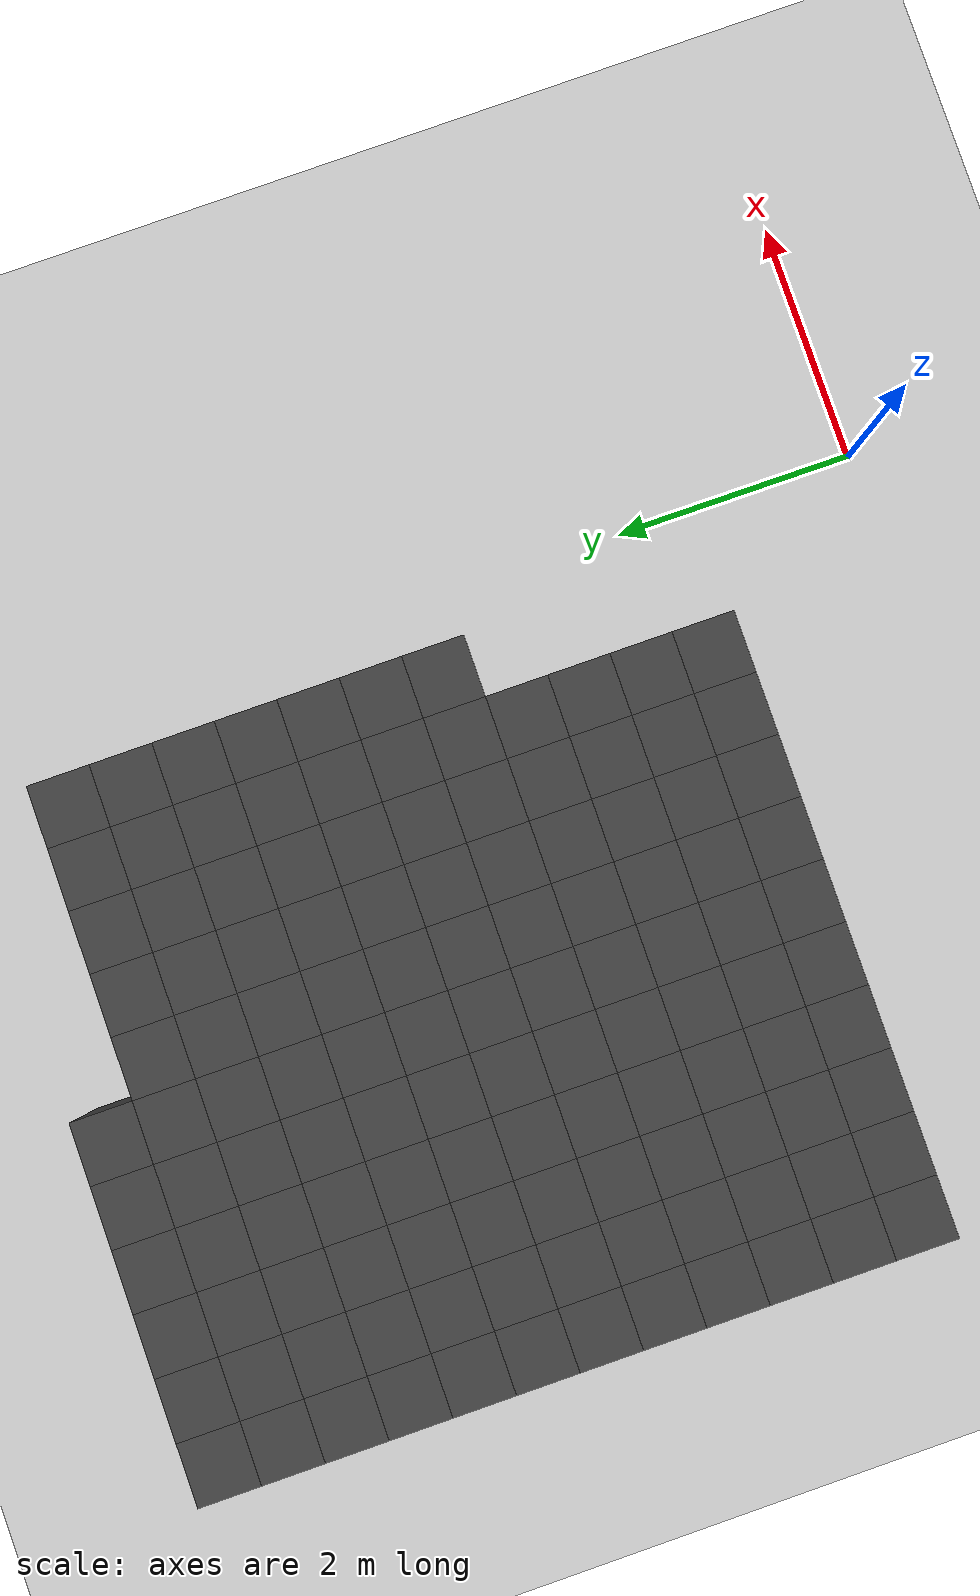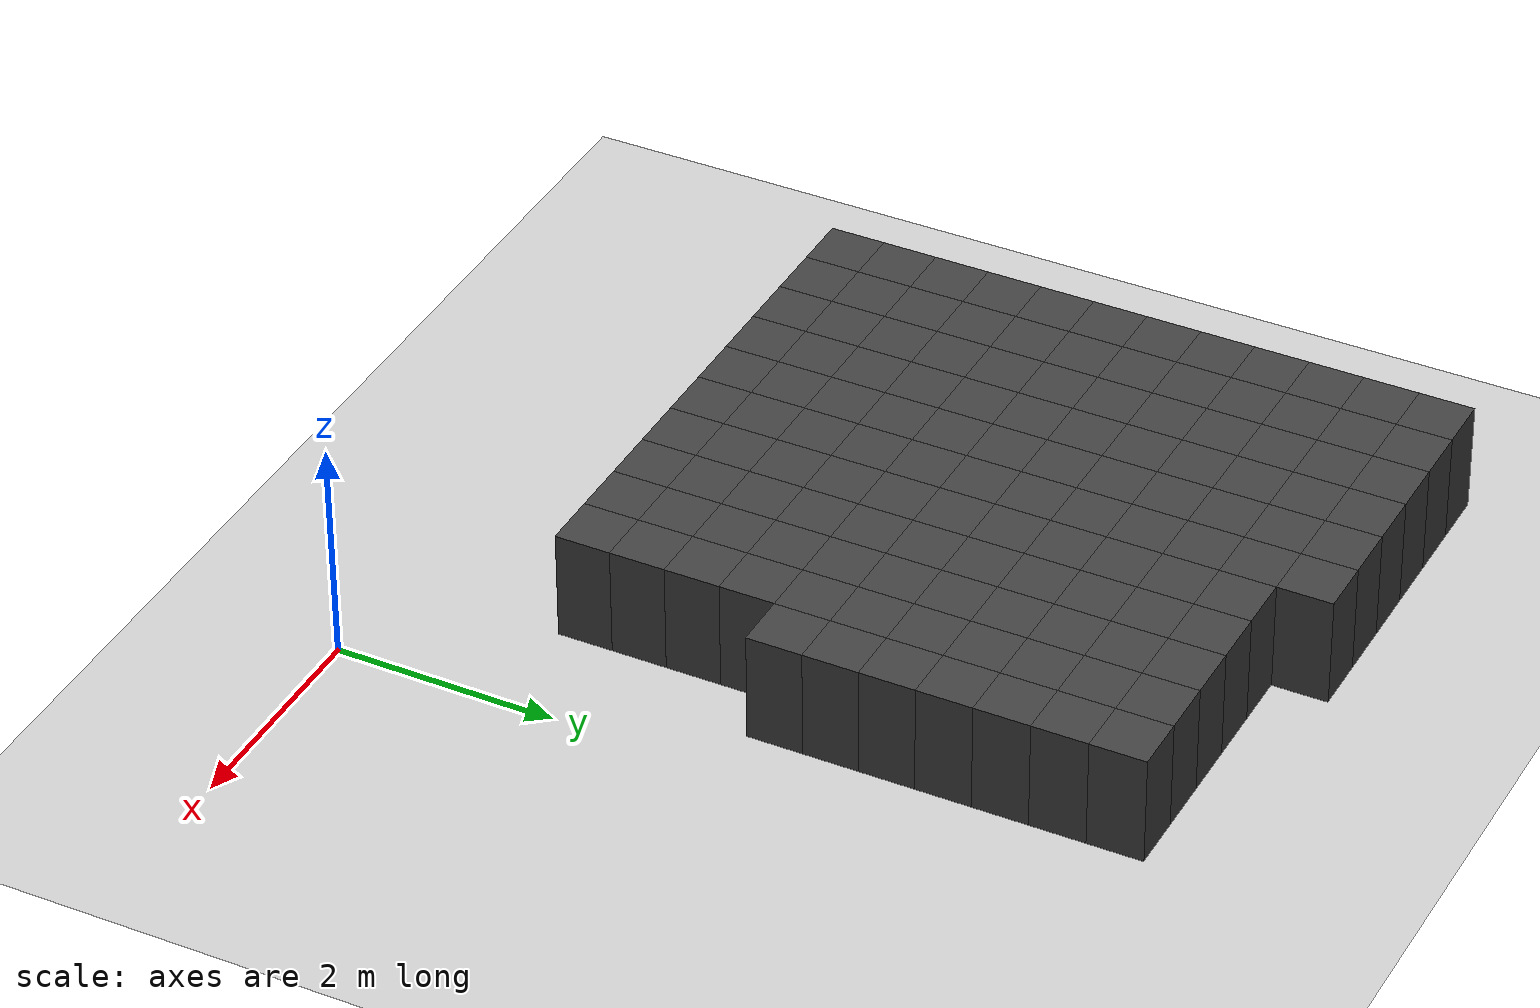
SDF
<sdf version="1.7">
 <world name="map_10726">
  <model name="ground_plane">
   <static>true</static>
   <link name="link">
    <collision name="collision">
     <geometry><plane><normal>0 0 1</normal><size>200 200</size></plane></geometry>
    </collision>
    <visual name="visual">
     <geometry><plane><normal>0 0 1</normal><size>200 200</size></plane></geometry>
     <material><ambient>0.8 0.8 0.8 1</ambient><diffuse>0.8 0.8 0.8 1</diffuse></material>
    </visual>
   </link>
  </model>
  <model name="maze_environment">
   <static>true</static>
   <link name="wall_473">
    <pose>-5.750 7.250 0.500 0 0 0</pose>
    <collision name="col"><geometry><box><size>0.5 0.5 1.0</size></box></geometry></collision>
    <visual name="vis">
     <geometry><box><size>0.5 0.5 1.0</size></box></geometry>
     <material><ambient>0.15 0.15 0.15 1</ambient><diffuse>0.25 0.25 0.25 1</diffuse></material>
    </visual>
   </link>
   <link name="wall_474">
    <pose>-5.250 7.250 0.500 0 0 0</pose>
    <collision name="col"><geometry><box><size>0.5 0.5 1.0</size></box></geometry></collision>
    <visual name="vis">
     <geometry><box><size>0.5 0.5 1.0</size></box></geometry>
     <material><ambient>0.15 0.15 0.15 1</ambient><diffuse>0.25 0.25 0.25 1</diffuse></material>
    </visual>
   </link>
   <link name="wall_475">
    <pose>-4.750 7.250 0.500 0 0 0</pose>
    <collision name="col"><geometry><box><size>0.5 0.5 1.0</size></box></geometry></collision>
    <visual name="vis">
     <geometry><box><size>0.5 0.5 1.0</size></box></geometry>
     <material><ambient>0.15 0.15 0.15 1</ambient><diffuse>0.25 0.25 0.25 1</diffuse></material>
    </visual>
   </link>
   <link name="wall_476">
    <pose>-4.250 7.250 0.500 0 0 0</pose>
    <collision name="col"><geometry><box><size>0.5 0.5 1.0</size></box></geometry></collision>
    <visual name="vis">
     <geometry><box><size>0.5 0.5 1.0</size></box></geometry>
     <material><ambient>0.15 0.15 0.15 1</ambient><diffuse>0.25 0.25 0.25 1</diffuse></material>
    </visual>
   </link>
   <link name="wall_477">
    <pose>-3.750 7.250 0.500 0 0 0</pose>
    <collision name="col"><geometry><box><size>0.5 0.5 1.0</size></box></geometry></collision>
    <visual name="vis">
     <geometry><box><size>0.5 0.5 1.0</size></box></geometry>
     <material><ambient>0.15 0.15 0.15 1</ambient><diffuse>0.25 0.25 0.25 1</diffuse></material>
    </visual>
   </link>
   <link name="wall_478">
    <pose>-3.250 7.250 0.500 0 0 0</pose>
    <collision name="col"><geometry><box><size>0.5 0.5 1.0</size></box></geometry></collision>
    <visual name="vis">
     <geometry><box><size>0.5 0.5 1.0</size></box></geometry>
     <material><ambient>0.15 0.15 0.15 1</ambient><diffuse>0.25 0.25 0.25 1</diffuse></material>
    </visual>
   </link>
   <link name="wall_514">
    <pose>-5.750 6.750 0.500 0 0 0</pose>
    <collision name="col"><geometry><box><size>0.5 0.5 1.0</size></box></geometry></collision>
    <visual name="vis">
     <geometry><box><size>0.5 0.5 1.0</size></box></geometry>
     <material><ambient>0.15 0.15 0.15 1</ambient><diffuse>0.25 0.25 0.25 1</diffuse></material>
    </visual>
   </link>
   <link name="wall_515">
    <pose>-5.250 6.750 0.500 0 0 0</pose>
    <collision name="col"><geometry><box><size>0.5 0.5 1.0</size></box></geometry></collision>
    <visual name="vis">
     <geometry><box><size>0.5 0.5 1.0</size></box></geometry>
     <material><ambient>0.15 0.15 0.15 1</ambient><diffuse>0.25 0.25 0.25 1</diffuse></material>
    </visual>
   </link>
   <link name="wall_516">
    <pose>-4.750 6.750 0.500 0 0 0</pose>
    <collision name="col"><geometry><box><size>0.5 0.5 1.0</size></box></geometry></collision>
    <visual name="vis">
     <geometry><box><size>0.5 0.5 1.0</size></box></geometry>
     <material><ambient>0.15 0.15 0.15 1</ambient><diffuse>0.25 0.25 0.25 1</diffuse></material>
    </visual>
   </link>
   <link name="wall_517">
    <pose>-4.250 6.750 0.500 0 0 0</pose>
    <collision name="col"><geometry><box><size>0.5 0.5 1.0</size></box></geometry></collision>
    <visual name="vis">
     <geometry><box><size>0.5 0.5 1.0</size></box></geometry>
     <material><ambient>0.15 0.15 0.15 1</ambient><diffuse>0.25 0.25 0.25 1</diffuse></material>
    </visual>
   </link>
   <link name="wall_518">
    <pose>-3.750 6.750 0.500 0 0 0</pose>
    <collision name="col"><geometry><box><size>0.5 0.5 1.0</size></box></geometry></collision>
    <visual name="vis">
     <geometry><box><size>0.5 0.5 1.0</size></box></geometry>
     <material><ambient>0.15 0.15 0.15 1</ambient><diffuse>0.25 0.25 0.25 1</diffuse></material>
    </visual>
   </link>
   <link name="wall_519">
    <pose>-3.250 6.750 0.500 0 0 0</pose>
    <collision name="col"><geometry><box><size>0.5 0.5 1.0</size></box></geometry></collision>
    <visual name="vis">
     <geometry><box><size>0.5 0.5 1.0</size></box></geometry>
     <material><ambient>0.15 0.15 0.15 1</ambient><diffuse>0.25 0.25 0.25 1</diffuse></material>
    </visual>
   </link>
   <link name="wall_520">
    <pose>-2.750 6.750 0.500 0 0 0</pose>
    <collision name="col"><geometry><box><size>0.5 0.5 1.0</size></box></geometry></collision>
    <visual name="vis">
     <geometry><box><size>0.5 0.5 1.0</size></box></geometry>
     <material><ambient>0.15 0.15 0.15 1</ambient><diffuse>0.25 0.25 0.25 1</diffuse></material>
    </visual>
   </link>
   <link name="wall_521">
    <pose>-2.250 6.750 0.500 0 0 0</pose>
    <collision name="col"><geometry><box><size>0.5 0.5 1.0</size></box></geometry></collision>
    <visual name="vis">
     <geometry><box><size>0.5 0.5 1.0</size></box></geometry>
     <material><ambient>0.15 0.15 0.15 1</ambient><diffuse>0.25 0.25 0.25 1</diffuse></material>
    </visual>
   </link>
   <link name="wall_522">
    <pose>-1.750 6.750 0.500 0 0 0</pose>
    <collision name="col"><geometry><box><size>0.5 0.5 1.0</size></box></geometry></collision>
    <visual name="vis">
     <geometry><box><size>0.5 0.5 1.0</size></box></geometry>
     <material><ambient>0.15 0.15 0.15 1</ambient><diffuse>0.25 0.25 0.25 1</diffuse></material>
    </visual>
   </link>
   <link name="wall_523">
    <pose>-1.250 6.750 0.500 0 0 0</pose>
    <collision name="col"><geometry><box><size>0.5 0.5 1.0</size></box></geometry></collision>
    <visual name="vis">
     <geometry><box><size>0.5 0.5 1.0</size></box></geometry>
     <material><ambient>0.15 0.15 0.15 1</ambient><diffuse>0.25 0.25 0.25 1</diffuse></material>
    </visual>
   </link>
   <link name="wall_524">
    <pose>-0.750 6.750 0.500 0 0 0</pose>
    <collision name="col"><geometry><box><size>0.5 0.5 1.0</size></box></geometry></collision>
    <visual name="vis">
     <geometry><box><size>0.5 0.5 1.0</size></box></geometry>
     <material><ambient>0.15 0.15 0.15 1</ambient><diffuse>0.25 0.25 0.25 1</diffuse></material>
    </visual>
   </link>
   <link name="wall_555">
    <pose>-5.750 6.250 0.500 0 0 0</pose>
    <collision name="col"><geometry><box><size>0.5 0.5 1.0</size></box></geometry></collision>
    <visual name="vis">
     <geometry><box><size>0.5 0.5 1.0</size></box></geometry>
     <material><ambient>0.15 0.15 0.15 1</ambient><diffuse>0.25 0.25 0.25 1</diffuse></material>
    </visual>
   </link>
   <link name="wall_556">
    <pose>-5.250 6.250 0.500 0 0 0</pose>
    <collision name="col"><geometry><box><size>0.5 0.5 1.0</size></box></geometry></collision>
    <visual name="vis">
     <geometry><box><size>0.5 0.5 1.0</size></box></geometry>
     <material><ambient>0.15 0.15 0.15 1</ambient><diffuse>0.25 0.25 0.25 1</diffuse></material>
    </visual>
   </link>
   <link name="wall_557">
    <pose>-4.750 6.250 0.500 0 0 0</pose>
    <collision name="col"><geometry><box><size>0.5 0.5 1.0</size></box></geometry></collision>
    <visual name="vis">
     <geometry><box><size>0.5 0.5 1.0</size></box></geometry>
     <material><ambient>0.15 0.15 0.15 1</ambient><diffuse>0.25 0.25 0.25 1</diffuse></material>
    </visual>
   </link>
   <link name="wall_558">
    <pose>-4.250 6.250 0.500 0 0 0</pose>
    <collision name="col"><geometry><box><size>0.5 0.5 1.0</size></box></geometry></collision>
    <visual name="vis">
     <geometry><box><size>0.5 0.5 1.0</size></box></geometry>
     <material><ambient>0.15 0.15 0.15 1</ambient><diffuse>0.25 0.25 0.25 1</diffuse></material>
    </visual>
   </link>
   <link name="wall_559">
    <pose>-3.750 6.250 0.500 0 0 0</pose>
    <collision name="col"><geometry><box><size>0.5 0.5 1.0</size></box></geometry></collision>
    <visual name="vis">
     <geometry><box><size>0.5 0.5 1.0</size></box></geometry>
     <material><ambient>0.15 0.15 0.15 1</ambient><diffuse>0.25 0.25 0.25 1</diffuse></material>
    </visual>
   </link>
   <link name="wall_560">
    <pose>-3.250 6.250 0.500 0 0 0</pose>
    <collision name="col"><geometry><box><size>0.5 0.5 1.0</size></box></geometry></collision>
    <visual name="vis">
     <geometry><box><size>0.5 0.5 1.0</size></box></geometry>
     <material><ambient>0.15 0.15 0.15 1</ambient><diffuse>0.25 0.25 0.25 1</diffuse></material>
    </visual>
   </link>
   <link name="wall_561">
    <pose>-2.750 6.250 0.500 0 0 0</pose>
    <collision name="col"><geometry><box><size>0.5 0.5 1.0</size></box></geometry></collision>
    <visual name="vis">
     <geometry><box><size>0.5 0.5 1.0</size></box></geometry>
     <material><ambient>0.15 0.15 0.15 1</ambient><diffuse>0.25 0.25 0.25 1</diffuse></material>
    </visual>
   </link>
   <link name="wall_562">
    <pose>-2.250 6.250 0.500 0 0 0</pose>
    <collision name="col"><geometry><box><size>0.5 0.5 1.0</size></box></geometry></collision>
    <visual name="vis">
     <geometry><box><size>0.5 0.5 1.0</size></box></geometry>
     <material><ambient>0.15 0.15 0.15 1</ambient><diffuse>0.25 0.25 0.25 1</diffuse></material>
    </visual>
   </link>
   <link name="wall_563">
    <pose>-1.750 6.250 0.500 0 0 0</pose>
    <collision name="col"><geometry><box><size>0.5 0.5 1.0</size></box></geometry></collision>
    <visual name="vis">
     <geometry><box><size>0.5 0.5 1.0</size></box></geometry>
     <material><ambient>0.15 0.15 0.15 1</ambient><diffuse>0.25 0.25 0.25 1</diffuse></material>
    </visual>
   </link>
   <link name="wall_564">
    <pose>-1.250 6.250 0.500 0 0 0</pose>
    <collision name="col"><geometry><box><size>0.5 0.5 1.0</size></box></geometry></collision>
    <visual name="vis">
     <geometry><box><size>0.5 0.5 1.0</size></box></geometry>
     <material><ambient>0.15 0.15 0.15 1</ambient><diffuse>0.25 0.25 0.25 1</diffuse></material>
    </visual>
   </link>
   <link name="wall_565">
    <pose>-0.750 6.250 0.500 0 0 0</pose>
    <collision name="col"><geometry><box><size>0.5 0.5 1.0</size></box></geometry></collision>
    <visual name="vis">
     <geometry><box><size>0.5 0.5 1.0</size></box></geometry>
     <material><ambient>0.15 0.15 0.15 1</ambient><diffuse>0.25 0.25 0.25 1</diffuse></material>
    </visual>
   </link>
   <link name="wall_596">
    <pose>-5.750 5.750 0.500 0 0 0</pose>
    <collision name="col"><geometry><box><size>0.5 0.5 1.0</size></box></geometry></collision>
    <visual name="vis">
     <geometry><box><size>0.5 0.5 1.0</size></box></geometry>
     <material><ambient>0.15 0.15 0.15 1</ambient><diffuse>0.25 0.25 0.25 1</diffuse></material>
    </visual>
   </link>
   <link name="wall_597">
    <pose>-5.250 5.750 0.500 0 0 0</pose>
    <collision name="col"><geometry><box><size>0.5 0.5 1.0</size></box></geometry></collision>
    <visual name="vis">
     <geometry><box><size>0.5 0.5 1.0</size></box></geometry>
     <material><ambient>0.15 0.15 0.15 1</ambient><diffuse>0.25 0.25 0.25 1</diffuse></material>
    </visual>
   </link>
   <link name="wall_598">
    <pose>-4.750 5.750 0.500 0 0 0</pose>
    <collision name="col"><geometry><box><size>0.5 0.5 1.0</size></box></geometry></collision>
    <visual name="vis">
     <geometry><box><size>0.5 0.5 1.0</size></box></geometry>
     <material><ambient>0.15 0.15 0.15 1</ambient><diffuse>0.25 0.25 0.25 1</diffuse></material>
    </visual>
   </link>
   <link name="wall_599">
    <pose>-4.250 5.750 0.500 0 0 0</pose>
    <collision name="col"><geometry><box><size>0.5 0.5 1.0</size></box></geometry></collision>
    <visual name="vis">
     <geometry><box><size>0.5 0.5 1.0</size></box></geometry>
     <material><ambient>0.15 0.15 0.15 1</ambient><diffuse>0.25 0.25 0.25 1</diffuse></material>
    </visual>
   </link>
   <link name="wall_600">
    <pose>-3.750 5.750 0.500 0 0 0</pose>
    <collision name="col"><geometry><box><size>0.5 0.5 1.0</size></box></geometry></collision>
    <visual name="vis">
     <geometry><box><size>0.5 0.5 1.0</size></box></geometry>
     <material><ambient>0.15 0.15 0.15 1</ambient><diffuse>0.25 0.25 0.25 1</diffuse></material>
    </visual>
   </link>
   <link name="wall_601">
    <pose>-3.250 5.750 0.500 0 0 0</pose>
    <collision name="col"><geometry><box><size>0.5 0.5 1.0</size></box></geometry></collision>
    <visual name="vis">
     <geometry><box><size>0.5 0.5 1.0</size></box></geometry>
     <material><ambient>0.15 0.15 0.15 1</ambient><diffuse>0.25 0.25 0.25 1</diffuse></material>
    </visual>
   </link>
   <link name="wall_602">
    <pose>-2.750 5.750 0.500 0 0 0</pose>
    <collision name="col"><geometry><box><size>0.5 0.5 1.0</size></box></geometry></collision>
    <visual name="vis">
     <geometry><box><size>0.5 0.5 1.0</size></box></geometry>
     <material><ambient>0.15 0.15 0.15 1</ambient><diffuse>0.25 0.25 0.25 1</diffuse></material>
    </visual>
   </link>
   <link name="wall_603">
    <pose>-2.250 5.750 0.500 0 0 0</pose>
    <collision name="col"><geometry><box><size>0.5 0.5 1.0</size></box></geometry></collision>
    <visual name="vis">
     <geometry><box><size>0.5 0.5 1.0</size></box></geometry>
     <material><ambient>0.15 0.15 0.15 1</ambient><diffuse>0.25 0.25 0.25 1</diffuse></material>
    </visual>
   </link>
   <link name="wall_604">
    <pose>-1.750 5.750 0.500 0 0 0</pose>
    <collision name="col"><geometry><box><size>0.5 0.5 1.0</size></box></geometry></collision>
    <visual name="vis">
     <geometry><box><size>0.5 0.5 1.0</size></box></geometry>
     <material><ambient>0.15 0.15 0.15 1</ambient><diffuse>0.25 0.25 0.25 1</diffuse></material>
    </visual>
   </link>
   <link name="wall_605">
    <pose>-1.250 5.750 0.500 0 0 0</pose>
    <collision name="col"><geometry><box><size>0.5 0.5 1.0</size></box></geometry></collision>
    <visual name="vis">
     <geometry><box><size>0.5 0.5 1.0</size></box></geometry>
     <material><ambient>0.15 0.15 0.15 1</ambient><diffuse>0.25 0.25 0.25 1</diffuse></material>
    </visual>
   </link>
   <link name="wall_606">
    <pose>-0.750 5.750 0.500 0 0 0</pose>
    <collision name="col"><geometry><box><size>0.5 0.5 1.0</size></box></geometry></collision>
    <visual name="vis">
     <geometry><box><size>0.5 0.5 1.0</size></box></geometry>
     <material><ambient>0.15 0.15 0.15 1</ambient><diffuse>0.25 0.25 0.25 1</diffuse></material>
    </visual>
   </link>
   <link name="wall_644">
    <pose>-5.750 5.250 0.500 0 0 0</pose>
    <collision name="col"><geometry><box><size>0.5 0.5 1.0</size></box></geometry></collision>
    <visual name="vis">
     <geometry><box><size>0.5 0.5 1.0</size></box></geometry>
     <material><ambient>0.15 0.15 0.15 1</ambient><diffuse>0.25 0.25 0.25 1</diffuse></material>
    </visual>
   </link>
   <link name="wall_645">
    <pose>-5.250 5.250 0.500 0 0 0</pose>
    <collision name="col"><geometry><box><size>0.5 0.5 1.0</size></box></geometry></collision>
    <visual name="vis">
     <geometry><box><size>0.5 0.5 1.0</size></box></geometry>
     <material><ambient>0.15 0.15 0.15 1</ambient><diffuse>0.25 0.25 0.25 1</diffuse></material>
    </visual>
   </link>
   <link name="wall_646">
    <pose>-4.750 5.250 0.500 0 0 0</pose>
    <collision name="col"><geometry><box><size>0.5 0.5 1.0</size></box></geometry></collision>
    <visual name="vis">
     <geometry><box><size>0.5 0.5 1.0</size></box></geometry>
     <material><ambient>0.15 0.15 0.15 1</ambient><diffuse>0.25 0.25 0.25 1</diffuse></material>
    </visual>
   </link>
   <link name="wall_647">
    <pose>-4.250 5.250 0.500 0 0 0</pose>
    <collision name="col"><geometry><box><size>0.5 0.5 1.0</size></box></geometry></collision>
    <visual name="vis">
     <geometry><box><size>0.5 0.5 1.0</size></box></geometry>
     <material><ambient>0.15 0.15 0.15 1</ambient><diffuse>0.25 0.25 0.25 1</diffuse></material>
    </visual>
   </link>
   <link name="wall_648">
    <pose>-3.750 5.250 0.500 0 0 0</pose>
    <collision name="col"><geometry><box><size>0.5 0.5 1.0</size></box></geometry></collision>
    <visual name="vis">
     <geometry><box><size>0.5 0.5 1.0</size></box></geometry>
     <material><ambient>0.15 0.15 0.15 1</ambient><diffuse>0.25 0.25 0.25 1</diffuse></material>
    </visual>
   </link>
   <link name="wall_649">
    <pose>-3.250 5.250 0.500 0 0 0</pose>
    <collision name="col"><geometry><box><size>0.5 0.5 1.0</size></box></geometry></collision>
    <visual name="vis">
     <geometry><box><size>0.5 0.5 1.0</size></box></geometry>
     <material><ambient>0.15 0.15 0.15 1</ambient><diffuse>0.25 0.25 0.25 1</diffuse></material>
    </visual>
   </link>
   <link name="wall_650">
    <pose>-2.750 5.250 0.500 0 0 0</pose>
    <collision name="col"><geometry><box><size>0.5 0.5 1.0</size></box></geometry></collision>
    <visual name="vis">
     <geometry><box><size>0.5 0.5 1.0</size></box></geometry>
     <material><ambient>0.15 0.15 0.15 1</ambient><diffuse>0.25 0.25 0.25 1</diffuse></material>
    </visual>
   </link>
   <link name="wall_651">
    <pose>-2.250 5.250 0.500 0 0 0</pose>
    <collision name="col"><geometry><box><size>0.5 0.5 1.0</size></box></geometry></collision>
    <visual name="vis">
     <geometry><box><size>0.5 0.5 1.0</size></box></geometry>
     <material><ambient>0.15 0.15 0.15 1</ambient><diffuse>0.25 0.25 0.25 1</diffuse></material>
    </visual>
   </link>
   <link name="wall_652">
    <pose>-1.750 5.250 0.500 0 0 0</pose>
    <collision name="col"><geometry><box><size>0.5 0.5 1.0</size></box></geometry></collision>
    <visual name="vis">
     <geometry><box><size>0.5 0.5 1.0</size></box></geometry>
     <material><ambient>0.15 0.15 0.15 1</ambient><diffuse>0.25 0.25 0.25 1</diffuse></material>
    </visual>
   </link>
   <link name="wall_653">
    <pose>-1.250 5.250 0.500 0 0 0</pose>
    <collision name="col"><geometry><box><size>0.5 0.5 1.0</size></box></geometry></collision>
    <visual name="vis">
     <geometry><box><size>0.5 0.5 1.0</size></box></geometry>
     <material><ambient>0.15 0.15 0.15 1</ambient><diffuse>0.25 0.25 0.25 1</diffuse></material>
    </visual>
   </link>
   <link name="wall_654">
    <pose>-0.750 5.250 0.500 0 0 0</pose>
    <collision name="col"><geometry><box><size>0.5 0.5 1.0</size></box></geometry></collision>
    <visual name="vis">
     <geometry><box><size>0.5 0.5 1.0</size></box></geometry>
     <material><ambient>0.15 0.15 0.15 1</ambient><diffuse>0.25 0.25 0.25 1</diffuse></material>
    </visual>
   </link>
   <link name="wall_692">
    <pose>-5.750 4.750 0.500 0 0 0</pose>
    <collision name="col"><geometry><box><size>0.5 0.5 1.0</size></box></geometry></collision>
    <visual name="vis">
     <geometry><box><size>0.5 0.5 1.0</size></box></geometry>
     <material><ambient>0.15 0.15 0.15 1</ambient><diffuse>0.25 0.25 0.25 1</diffuse></material>
    </visual>
   </link>
   <link name="wall_693">
    <pose>-5.250 4.750 0.500 0 0 0</pose>
    <collision name="col"><geometry><box><size>0.5 0.5 1.0</size></box></geometry></collision>
    <visual name="vis">
     <geometry><box><size>0.5 0.5 1.0</size></box></geometry>
     <material><ambient>0.15 0.15 0.15 1</ambient><diffuse>0.25 0.25 0.25 1</diffuse></material>
    </visual>
   </link>
   <link name="wall_694">
    <pose>-4.750 4.750 0.500 0 0 0</pose>
    <collision name="col"><geometry><box><size>0.5 0.5 1.0</size></box></geometry></collision>
    <visual name="vis">
     <geometry><box><size>0.5 0.5 1.0</size></box></geometry>
     <material><ambient>0.15 0.15 0.15 1</ambient><diffuse>0.25 0.25 0.25 1</diffuse></material>
    </visual>
   </link>
   <link name="wall_695">
    <pose>-4.250 4.750 0.500 0 0 0</pose>
    <collision name="col"><geometry><box><size>0.5 0.5 1.0</size></box></geometry></collision>
    <visual name="vis">
     <geometry><box><size>0.5 0.5 1.0</size></box></geometry>
     <material><ambient>0.15 0.15 0.15 1</ambient><diffuse>0.25 0.25 0.25 1</diffuse></material>
    </visual>
   </link>
   <link name="wall_696">
    <pose>-3.750 4.750 0.500 0 0 0</pose>
    <collision name="col"><geometry><box><size>0.5 0.5 1.0</size></box></geometry></collision>
    <visual name="vis">
     <geometry><box><size>0.5 0.5 1.0</size></box></geometry>
     <material><ambient>0.15 0.15 0.15 1</ambient><diffuse>0.25 0.25 0.25 1</diffuse></material>
    </visual>
   </link>
   <link name="wall_697">
    <pose>-3.250 4.750 0.500 0 0 0</pose>
    <collision name="col"><geometry><box><size>0.5 0.5 1.0</size></box></geometry></collision>
    <visual name="vis">
     <geometry><box><size>0.5 0.5 1.0</size></box></geometry>
     <material><ambient>0.15 0.15 0.15 1</ambient><diffuse>0.25 0.25 0.25 1</diffuse></material>
    </visual>
   </link>
   <link name="wall_698">
    <pose>-2.750 4.750 0.500 0 0 0</pose>
    <collision name="col"><geometry><box><size>0.5 0.5 1.0</size></box></geometry></collision>
    <visual name="vis">
     <geometry><box><size>0.5 0.5 1.0</size></box></geometry>
     <material><ambient>0.15 0.15 0.15 1</ambient><diffuse>0.25 0.25 0.25 1</diffuse></material>
    </visual>
   </link>
   <link name="wall_699">
    <pose>-2.250 4.750 0.500 0 0 0</pose>
    <collision name="col"><geometry><box><size>0.5 0.5 1.0</size></box></geometry></collision>
    <visual name="vis">
     <geometry><box><size>0.5 0.5 1.0</size></box></geometry>
     <material><ambient>0.15 0.15 0.15 1</ambient><diffuse>0.25 0.25 0.25 1</diffuse></material>
    </visual>
   </link>
   <link name="wall_700">
    <pose>-1.750 4.750 0.500 0 0 0</pose>
    <collision name="col"><geometry><box><size>0.5 0.5 1.0</size></box></geometry></collision>
    <visual name="vis">
     <geometry><box><size>0.5 0.5 1.0</size></box></geometry>
     <material><ambient>0.15 0.15 0.15 1</ambient><diffuse>0.25 0.25 0.25 1</diffuse></material>
    </visual>
   </link>
   <link name="wall_701">
    <pose>-1.250 4.750 0.500 0 0 0</pose>
    <collision name="col"><geometry><box><size>0.5 0.5 1.0</size></box></geometry></collision>
    <visual name="vis">
     <geometry><box><size>0.5 0.5 1.0</size></box></geometry>
     <material><ambient>0.15 0.15 0.15 1</ambient><diffuse>0.25 0.25 0.25 1</diffuse></material>
    </visual>
   </link>
   <link name="wall_702">
    <pose>-0.750 4.750 0.500 0 0 0</pose>
    <collision name="col"><geometry><box><size>0.5 0.5 1.0</size></box></geometry></collision>
    <visual name="vis">
     <geometry><box><size>0.5 0.5 1.0</size></box></geometry>
     <material><ambient>0.15 0.15 0.15 1</ambient><diffuse>0.25 0.25 0.25 1</diffuse></material>
    </visual>
   </link>
   <link name="wall_740">
    <pose>-5.750 4.250 0.500 0 0 0</pose>
    <collision name="col"><geometry><box><size>0.5 0.5 1.0</size></box></geometry></collision>
    <visual name="vis">
     <geometry><box><size>0.5 0.5 1.0</size></box></geometry>
     <material><ambient>0.15 0.15 0.15 1</ambient><diffuse>0.25 0.25 0.25 1</diffuse></material>
    </visual>
   </link>
   <link name="wall_741">
    <pose>-5.250 4.250 0.500 0 0 0</pose>
    <collision name="col"><geometry><box><size>0.5 0.5 1.0</size></box></geometry></collision>
    <visual name="vis">
     <geometry><box><size>0.5 0.5 1.0</size></box></geometry>
     <material><ambient>0.15 0.15 0.15 1</ambient><diffuse>0.25 0.25 0.25 1</diffuse></material>
    </visual>
   </link>
   <link name="wall_742">
    <pose>-4.750 4.250 0.500 0 0 0</pose>
    <collision name="col"><geometry><box><size>0.5 0.5 1.0</size></box></geometry></collision>
    <visual name="vis">
     <geometry><box><size>0.5 0.5 1.0</size></box></geometry>
     <material><ambient>0.15 0.15 0.15 1</ambient><diffuse>0.25 0.25 0.25 1</diffuse></material>
    </visual>
   </link>
   <link name="wall_743">
    <pose>-4.250 4.250 0.500 0 0 0</pose>
    <collision name="col"><geometry><box><size>0.5 0.5 1.0</size></box></geometry></collision>
    <visual name="vis">
     <geometry><box><size>0.5 0.5 1.0</size></box></geometry>
     <material><ambient>0.15 0.15 0.15 1</ambient><diffuse>0.25 0.25 0.25 1</diffuse></material>
    </visual>
   </link>
   <link name="wall_744">
    <pose>-3.750 4.250 0.500 0 0 0</pose>
    <collision name="col"><geometry><box><size>0.5 0.5 1.0</size></box></geometry></collision>
    <visual name="vis">
     <geometry><box><size>0.5 0.5 1.0</size></box></geometry>
     <material><ambient>0.15 0.15 0.15 1</ambient><diffuse>0.25 0.25 0.25 1</diffuse></material>
    </visual>
   </link>
   <link name="wall_745">
    <pose>-3.250 4.250 0.500 0 0 0</pose>
    <collision name="col"><geometry><box><size>0.5 0.5 1.0</size></box></geometry></collision>
    <visual name="vis">
     <geometry><box><size>0.5 0.5 1.0</size></box></geometry>
     <material><ambient>0.15 0.15 0.15 1</ambient><diffuse>0.25 0.25 0.25 1</diffuse></material>
    </visual>
   </link>
   <link name="wall_746">
    <pose>-2.750 4.250 0.500 0 0 0</pose>
    <collision name="col"><geometry><box><size>0.5 0.5 1.0</size></box></geometry></collision>
    <visual name="vis">
     <geometry><box><size>0.5 0.5 1.0</size></box></geometry>
     <material><ambient>0.15 0.15 0.15 1</ambient><diffuse>0.25 0.25 0.25 1</diffuse></material>
    </visual>
   </link>
   <link name="wall_747">
    <pose>-2.250 4.250 0.500 0 0 0</pose>
    <collision name="col"><geometry><box><size>0.5 0.5 1.0</size></box></geometry></collision>
    <visual name="vis">
     <geometry><box><size>0.5 0.5 1.0</size></box></geometry>
     <material><ambient>0.15 0.15 0.15 1</ambient><diffuse>0.25 0.25 0.25 1</diffuse></material>
    </visual>
   </link>
   <link name="wall_748">
    <pose>-1.750 4.250 0.500 0 0 0</pose>
    <collision name="col"><geometry><box><size>0.5 0.5 1.0</size></box></geometry></collision>
    <visual name="vis">
     <geometry><box><size>0.5 0.5 1.0</size></box></geometry>
     <material><ambient>0.15 0.15 0.15 1</ambient><diffuse>0.25 0.25 0.25 1</diffuse></material>
    </visual>
   </link>
   <link name="wall_749">
    <pose>-1.250 4.250 0.500 0 0 0</pose>
    <collision name="col"><geometry><box><size>0.5 0.5 1.0</size></box></geometry></collision>
    <visual name="vis">
     <geometry><box><size>0.5 0.5 1.0</size></box></geometry>
     <material><ambient>0.15 0.15 0.15 1</ambient><diffuse>0.25 0.25 0.25 1</diffuse></material>
    </visual>
   </link>
   <link name="wall_750">
    <pose>-0.750 4.250 0.500 0 0 0</pose>
    <collision name="col"><geometry><box><size>0.5 0.5 1.0</size></box></geometry></collision>
    <visual name="vis">
     <geometry><box><size>0.5 0.5 1.0</size></box></geometry>
     <material><ambient>0.15 0.15 0.15 1</ambient><diffuse>0.25 0.25 0.25 1</diffuse></material>
    </visual>
   </link>
   <link name="wall_788">
    <pose>-5.750 3.750 0.500 0 0 0</pose>
    <collision name="col"><geometry><box><size>0.5 0.5 1.0</size></box></geometry></collision>
    <visual name="vis">
     <geometry><box><size>0.5 0.5 1.0</size></box></geometry>
     <material><ambient>0.15 0.15 0.15 1</ambient><diffuse>0.25 0.25 0.25 1</diffuse></material>
    </visual>
   </link>
   <link name="wall_789">
    <pose>-5.250 3.750 0.500 0 0 0</pose>
    <collision name="col"><geometry><box><size>0.5 0.5 1.0</size></box></geometry></collision>
    <visual name="vis">
     <geometry><box><size>0.5 0.5 1.0</size></box></geometry>
     <material><ambient>0.15 0.15 0.15 1</ambient><diffuse>0.25 0.25 0.25 1</diffuse></material>
    </visual>
   </link>
   <link name="wall_790">
    <pose>-4.750 3.750 0.500 0 0 0</pose>
    <collision name="col"><geometry><box><size>0.5 0.5 1.0</size></box></geometry></collision>
    <visual name="vis">
     <geometry><box><size>0.5 0.5 1.0</size></box></geometry>
     <material><ambient>0.15 0.15 0.15 1</ambient><diffuse>0.25 0.25 0.25 1</diffuse></material>
    </visual>
   </link>
   <link name="wall_791">
    <pose>-4.250 3.750 0.500 0 0 0</pose>
    <collision name="col"><geometry><box><size>0.5 0.5 1.0</size></box></geometry></collision>
    <visual name="vis">
     <geometry><box><size>0.5 0.5 1.0</size></box></geometry>
     <material><ambient>0.15 0.15 0.15 1</ambient><diffuse>0.25 0.25 0.25 1</diffuse></material>
    </visual>
   </link>
   <link name="wall_792">
    <pose>-3.750 3.750 0.500 0 0 0</pose>
    <collision name="col"><geometry><box><size>0.5 0.5 1.0</size></box></geometry></collision>
    <visual name="vis">
     <geometry><box><size>0.5 0.5 1.0</size></box></geometry>
     <material><ambient>0.15 0.15 0.15 1</ambient><diffuse>0.25 0.25 0.25 1</diffuse></material>
    </visual>
   </link>
   <link name="wall_793">
    <pose>-3.250 3.750 0.500 0 0 0</pose>
    <collision name="col"><geometry><box><size>0.5 0.5 1.0</size></box></geometry></collision>
    <visual name="vis">
     <geometry><box><size>0.5 0.5 1.0</size></box></geometry>
     <material><ambient>0.15 0.15 0.15 1</ambient><diffuse>0.25 0.25 0.25 1</diffuse></material>
    </visual>
   </link>
   <link name="wall_794">
    <pose>-2.750 3.750 0.500 0 0 0</pose>
    <collision name="col"><geometry><box><size>0.5 0.5 1.0</size></box></geometry></collision>
    <visual name="vis">
     <geometry><box><size>0.5 0.5 1.0</size></box></geometry>
     <material><ambient>0.15 0.15 0.15 1</ambient><diffuse>0.25 0.25 0.25 1</diffuse></material>
    </visual>
   </link>
   <link name="wall_795">
    <pose>-2.250 3.750 0.500 0 0 0</pose>
    <collision name="col"><geometry><box><size>0.5 0.5 1.0</size></box></geometry></collision>
    <visual name="vis">
     <geometry><box><size>0.5 0.5 1.0</size></box></geometry>
     <material><ambient>0.15 0.15 0.15 1</ambient><diffuse>0.25 0.25 0.25 1</diffuse></material>
    </visual>
   </link>
   <link name="wall_796">
    <pose>-1.750 3.750 0.500 0 0 0</pose>
    <collision name="col"><geometry><box><size>0.5 0.5 1.0</size></box></geometry></collision>
    <visual name="vis">
     <geometry><box><size>0.5 0.5 1.0</size></box></geometry>
     <material><ambient>0.15 0.15 0.15 1</ambient><diffuse>0.25 0.25 0.25 1</diffuse></material>
    </visual>
   </link>
   <link name="wall_797">
    <pose>-1.250 3.750 0.500 0 0 0</pose>
    <collision name="col"><geometry><box><size>0.5 0.5 1.0</size></box></geometry></collision>
    <visual name="vis">
     <geometry><box><size>0.5 0.5 1.0</size></box></geometry>
     <material><ambient>0.15 0.15 0.15 1</ambient><diffuse>0.25 0.25 0.25 1</diffuse></material>
    </visual>
   </link>
   <link name="wall_798">
    <pose>-0.750 3.750 0.500 0 0 0</pose>
    <collision name="col"><geometry><box><size>0.5 0.5 1.0</size></box></geometry></collision>
    <visual name="vis">
     <geometry><box><size>0.5 0.5 1.0</size></box></geometry>
     <material><ambient>0.15 0.15 0.15 1</ambient><diffuse>0.25 0.25 0.25 1</diffuse></material>
    </visual>
   </link>
   <link name="wall_836">
    <pose>-5.750 3.250 0.500 0 0 0</pose>
    <collision name="col"><geometry><box><size>0.5 0.5 1.0</size></box></geometry></collision>
    <visual name="vis">
     <geometry><box><size>0.5 0.5 1.0</size></box></geometry>
     <material><ambient>0.15 0.15 0.15 1</ambient><diffuse>0.25 0.25 0.25 1</diffuse></material>
    </visual>
   </link>
   <link name="wall_837">
    <pose>-5.250 3.250 0.500 0 0 0</pose>
    <collision name="col"><geometry><box><size>0.5 0.5 1.0</size></box></geometry></collision>
    <visual name="vis">
     <geometry><box><size>0.5 0.5 1.0</size></box></geometry>
     <material><ambient>0.15 0.15 0.15 1</ambient><diffuse>0.25 0.25 0.25 1</diffuse></material>
    </visual>
   </link>
   <link name="wall_838">
    <pose>-4.750 3.250 0.500 0 0 0</pose>
    <collision name="col"><geometry><box><size>0.5 0.5 1.0</size></box></geometry></collision>
    <visual name="vis">
     <geometry><box><size>0.5 0.5 1.0</size></box></geometry>
     <material><ambient>0.15 0.15 0.15 1</ambient><diffuse>0.25 0.25 0.25 1</diffuse></material>
    </visual>
   </link>
   <link name="wall_839">
    <pose>-4.250 3.250 0.500 0 0 0</pose>
    <collision name="col"><geometry><box><size>0.5 0.5 1.0</size></box></geometry></collision>
    <visual name="vis">
     <geometry><box><size>0.5 0.5 1.0</size></box></geometry>
     <material><ambient>0.15 0.15 0.15 1</ambient><diffuse>0.25 0.25 0.25 1</diffuse></material>
    </visual>
   </link>
   <link name="wall_840">
    <pose>-3.750 3.250 0.500 0 0 0</pose>
    <collision name="col"><geometry><box><size>0.5 0.5 1.0</size></box></geometry></collision>
    <visual name="vis">
     <geometry><box><size>0.5 0.5 1.0</size></box></geometry>
     <material><ambient>0.15 0.15 0.15 1</ambient><diffuse>0.25 0.25 0.25 1</diffuse></material>
    </visual>
   </link>
   <link name="wall_841">
    <pose>-3.250 3.250 0.500 0 0 0</pose>
    <collision name="col"><geometry><box><size>0.5 0.5 1.0</size></box></geometry></collision>
    <visual name="vis">
     <geometry><box><size>0.5 0.5 1.0</size></box></geometry>
     <material><ambient>0.15 0.15 0.15 1</ambient><diffuse>0.25 0.25 0.25 1</diffuse></material>
    </visual>
   </link>
   <link name="wall_842">
    <pose>-2.750 3.250 0.500 0 0 0</pose>
    <collision name="col"><geometry><box><size>0.5 0.5 1.0</size></box></geometry></collision>
    <visual name="vis">
     <geometry><box><size>0.5 0.5 1.0</size></box></geometry>
     <material><ambient>0.15 0.15 0.15 1</ambient><diffuse>0.25 0.25 0.25 1</diffuse></material>
    </visual>
   </link>
   <link name="wall_843">
    <pose>-2.250 3.250 0.500 0 0 0</pose>
    <collision name="col"><geometry><box><size>0.5 0.5 1.0</size></box></geometry></collision>
    <visual name="vis">
     <geometry><box><size>0.5 0.5 1.0</size></box></geometry>
     <material><ambient>0.15 0.15 0.15 1</ambient><diffuse>0.25 0.25 0.25 1</diffuse></material>
    </visual>
   </link>
   <link name="wall_844">
    <pose>-1.750 3.250 0.500 0 0 0</pose>
    <collision name="col"><geometry><box><size>0.5 0.5 1.0</size></box></geometry></collision>
    <visual name="vis">
     <geometry><box><size>0.5 0.5 1.0</size></box></geometry>
     <material><ambient>0.15 0.15 0.15 1</ambient><diffuse>0.25 0.25 0.25 1</diffuse></material>
    </visual>
   </link>
   <link name="wall_845">
    <pose>-1.250 3.250 0.500 0 0 0</pose>
    <collision name="col"><geometry><box><size>0.5 0.5 1.0</size></box></geometry></collision>
    <visual name="vis">
     <geometry><box><size>0.5 0.5 1.0</size></box></geometry>
     <material><ambient>0.15 0.15 0.15 1</ambient><diffuse>0.25 0.25 0.25 1</diffuse></material>
    </visual>
   </link>
   <link name="wall_884">
    <pose>-5.750 2.750 0.500 0 0 0</pose>
    <collision name="col"><geometry><box><size>0.5 0.5 1.0</size></box></geometry></collision>
    <visual name="vis">
     <geometry><box><size>0.5 0.5 1.0</size></box></geometry>
     <material><ambient>0.15 0.15 0.15 1</ambient><diffuse>0.25 0.25 0.25 1</diffuse></material>
    </visual>
   </link>
   <link name="wall_885">
    <pose>-5.250 2.750 0.500 0 0 0</pose>
    <collision name="col"><geometry><box><size>0.5 0.5 1.0</size></box></geometry></collision>
    <visual name="vis">
     <geometry><box><size>0.5 0.5 1.0</size></box></geometry>
     <material><ambient>0.15 0.15 0.15 1</ambient><diffuse>0.25 0.25 0.25 1</diffuse></material>
    </visual>
   </link>
   <link name="wall_886">
    <pose>-4.750 2.750 0.500 0 0 0</pose>
    <collision name="col"><geometry><box><size>0.5 0.5 1.0</size></box></geometry></collision>
    <visual name="vis">
     <geometry><box><size>0.5 0.5 1.0</size></box></geometry>
     <material><ambient>0.15 0.15 0.15 1</ambient><diffuse>0.25 0.25 0.25 1</diffuse></material>
    </visual>
   </link>
   <link name="wall_887">
    <pose>-4.250 2.750 0.500 0 0 0</pose>
    <collision name="col"><geometry><box><size>0.5 0.5 1.0</size></box></geometry></collision>
    <visual name="vis">
     <geometry><box><size>0.5 0.5 1.0</size></box></geometry>
     <material><ambient>0.15 0.15 0.15 1</ambient><diffuse>0.25 0.25 0.25 1</diffuse></material>
    </visual>
   </link>
   <link name="wall_888">
    <pose>-3.750 2.750 0.500 0 0 0</pose>
    <collision name="col"><geometry><box><size>0.5 0.5 1.0</size></box></geometry></collision>
    <visual name="vis">
     <geometry><box><size>0.5 0.5 1.0</size></box></geometry>
     <material><ambient>0.15 0.15 0.15 1</ambient><diffuse>0.25 0.25 0.25 1</diffuse></material>
    </visual>
   </link>
   <link name="wall_889">
    <pose>-3.250 2.750 0.500 0 0 0</pose>
    <collision name="col"><geometry><box><size>0.5 0.5 1.0</size></box></geometry></collision>
    <visual name="vis">
     <geometry><box><size>0.5 0.5 1.0</size></box></geometry>
     <material><ambient>0.15 0.15 0.15 1</ambient><diffuse>0.25 0.25 0.25 1</diffuse></material>
    </visual>
   </link>
   <link name="wall_890">
    <pose>-2.750 2.750 0.500 0 0 0</pose>
    <collision name="col"><geometry><box><size>0.5 0.5 1.0</size></box></geometry></collision>
    <visual name="vis">
     <geometry><box><size>0.5 0.5 1.0</size></box></geometry>
     <material><ambient>0.15 0.15 0.15 1</ambient><diffuse>0.25 0.25 0.25 1</diffuse></material>
    </visual>
   </link>
   <link name="wall_891">
    <pose>-2.250 2.750 0.500 0 0 0</pose>
    <collision name="col"><geometry><box><size>0.5 0.5 1.0</size></box></geometry></collision>
    <visual name="vis">
     <geometry><box><size>0.5 0.5 1.0</size></box></geometry>
     <material><ambient>0.15 0.15 0.15 1</ambient><diffuse>0.25 0.25 0.25 1</diffuse></material>
    </visual>
   </link>
   <link name="wall_892">
    <pose>-1.750 2.750 0.500 0 0 0</pose>
    <collision name="col"><geometry><box><size>0.5 0.5 1.0</size></box></geometry></collision>
    <visual name="vis">
     <geometry><box><size>0.5 0.5 1.0</size></box></geometry>
     <material><ambient>0.15 0.15 0.15 1</ambient><diffuse>0.25 0.25 0.25 1</diffuse></material>
    </visual>
   </link>
   <link name="wall_893">
    <pose>-1.250 2.750 0.500 0 0 0</pose>
    <collision name="col"><geometry><box><size>0.5 0.5 1.0</size></box></geometry></collision>
    <visual name="vis">
     <geometry><box><size>0.5 0.5 1.0</size></box></geometry>
     <material><ambient>0.15 0.15 0.15 1</ambient><diffuse>0.25 0.25 0.25 1</diffuse></material>
    </visual>
   </link>
   <link name="wall_932">
    <pose>-5.750 2.250 0.500 0 0 0</pose>
    <collision name="col"><geometry><box><size>0.5 0.5 1.0</size></box></geometry></collision>
    <visual name="vis">
     <geometry><box><size>0.5 0.5 1.0</size></box></geometry>
     <material><ambient>0.15 0.15 0.15 1</ambient><diffuse>0.25 0.25 0.25 1</diffuse></material>
    </visual>
   </link>
   <link name="wall_933">
    <pose>-5.250 2.250 0.500 0 0 0</pose>
    <collision name="col"><geometry><box><size>0.5 0.5 1.0</size></box></geometry></collision>
    <visual name="vis">
     <geometry><box><size>0.5 0.5 1.0</size></box></geometry>
     <material><ambient>0.15 0.15 0.15 1</ambient><diffuse>0.25 0.25 0.25 1</diffuse></material>
    </visual>
   </link>
   <link name="wall_934">
    <pose>-4.750 2.250 0.500 0 0 0</pose>
    <collision name="col"><geometry><box><size>0.5 0.5 1.0</size></box></geometry></collision>
    <visual name="vis">
     <geometry><box><size>0.5 0.5 1.0</size></box></geometry>
     <material><ambient>0.15 0.15 0.15 1</ambient><diffuse>0.25 0.25 0.25 1</diffuse></material>
    </visual>
   </link>
   <link name="wall_935">
    <pose>-4.250 2.250 0.500 0 0 0</pose>
    <collision name="col"><geometry><box><size>0.5 0.5 1.0</size></box></geometry></collision>
    <visual name="vis">
     <geometry><box><size>0.5 0.5 1.0</size></box></geometry>
     <material><ambient>0.15 0.15 0.15 1</ambient><diffuse>0.25 0.25 0.25 1</diffuse></material>
    </visual>
   </link>
   <link name="wall_936">
    <pose>-3.750 2.250 0.500 0 0 0</pose>
    <collision name="col"><geometry><box><size>0.5 0.5 1.0</size></box></geometry></collision>
    <visual name="vis">
     <geometry><box><size>0.5 0.5 1.0</size></box></geometry>
     <material><ambient>0.15 0.15 0.15 1</ambient><diffuse>0.25 0.25 0.25 1</diffuse></material>
    </visual>
   </link>
   <link name="wall_937">
    <pose>-3.250 2.250 0.500 0 0 0</pose>
    <collision name="col"><geometry><box><size>0.5 0.5 1.0</size></box></geometry></collision>
    <visual name="vis">
     <geometry><box><size>0.5 0.5 1.0</size></box></geometry>
     <material><ambient>0.15 0.15 0.15 1</ambient><diffuse>0.25 0.25 0.25 1</diffuse></material>
    </visual>
   </link>
   <link name="wall_938">
    <pose>-2.750 2.250 0.500 0 0 0</pose>
    <collision name="col"><geometry><box><size>0.5 0.5 1.0</size></box></geometry></collision>
    <visual name="vis">
     <geometry><box><size>0.5 0.5 1.0</size></box></geometry>
     <material><ambient>0.15 0.15 0.15 1</ambient><diffuse>0.25 0.25 0.25 1</diffuse></material>
    </visual>
   </link>
   <link name="wall_939">
    <pose>-2.250 2.250 0.500 0 0 0</pose>
    <collision name="col"><geometry><box><size>0.5 0.5 1.0</size></box></geometry></collision>
    <visual name="vis">
     <geometry><box><size>0.5 0.5 1.0</size></box></geometry>
     <material><ambient>0.15 0.15 0.15 1</ambient><diffuse>0.25 0.25 0.25 1</diffuse></material>
    </visual>
   </link>
   <link name="wall_940">
    <pose>-1.750 2.250 0.500 0 0 0</pose>
    <collision name="col"><geometry><box><size>0.5 0.5 1.0</size></box></geometry></collision>
    <visual name="vis">
     <geometry><box><size>0.5 0.5 1.0</size></box></geometry>
     <material><ambient>0.15 0.15 0.15 1</ambient><diffuse>0.25 0.25 0.25 1</diffuse></material>
    </visual>
   </link>
   <link name="wall_941">
    <pose>-1.250 2.250 0.500 0 0 0</pose>
    <collision name="col"><geometry><box><size>0.5 0.5 1.0</size></box></geometry></collision>
    <visual name="vis">
     <geometry><box><size>0.5 0.5 1.0</size></box></geometry>
     <material><ambient>0.15 0.15 0.15 1</ambient><diffuse>0.25 0.25 0.25 1</diffuse></material>
    </visual>
   </link>
   <link name="wall_974">
    <pose>-5.750 1.750 0.500 0 0 0</pose>
    <collision name="col"><geometry><box><size>0.5 0.5 1.0</size></box></geometry></collision>
    <visual name="vis">
     <geometry><box><size>0.5 0.5 1.0</size></box></geometry>
     <material><ambient>0.15 0.15 0.15 1</ambient><diffuse>0.25 0.25 0.25 1</diffuse></material>
    </visual>
   </link>
   <link name="wall_975">
    <pose>-5.250 1.750 0.500 0 0 0</pose>
    <collision name="col"><geometry><box><size>0.5 0.5 1.0</size></box></geometry></collision>
    <visual name="vis">
     <geometry><box><size>0.5 0.5 1.0</size></box></geometry>
     <material><ambient>0.15 0.15 0.15 1</ambient><diffuse>0.25 0.25 0.25 1</diffuse></material>
    </visual>
   </link>
   <link name="wall_976">
    <pose>-4.750 1.750 0.500 0 0 0</pose>
    <collision name="col"><geometry><box><size>0.5 0.5 1.0</size></box></geometry></collision>
    <visual name="vis">
     <geometry><box><size>0.5 0.5 1.0</size></box></geometry>
     <material><ambient>0.15 0.15 0.15 1</ambient><diffuse>0.25 0.25 0.25 1</diffuse></material>
    </visual>
   </link>
   <link name="wall_977">
    <pose>-4.250 1.750 0.500 0 0 0</pose>
    <collision name="col"><geometry><box><size>0.5 0.5 1.0</size></box></geometry></collision>
    <visual name="vis">
     <geometry><box><size>0.5 0.5 1.0</size></box></geometry>
     <material><ambient>0.15 0.15 0.15 1</ambient><diffuse>0.25 0.25 0.25 1</diffuse></material>
    </visual>
   </link>
   <link name="wall_978">
    <pose>-3.750 1.750 0.500 0 0 0</pose>
    <collision name="col"><geometry><box><size>0.5 0.5 1.0</size></box></geometry></collision>
    <visual name="vis">
     <geometry><box><size>0.5 0.5 1.0</size></box></geometry>
     <material><ambient>0.15 0.15 0.15 1</ambient><diffuse>0.25 0.25 0.25 1</diffuse></material>
    </visual>
   </link>
   <link name="wall_979">
    <pose>-3.250 1.750 0.500 0 0 0</pose>
    <collision name="col"><geometry><box><size>0.5 0.5 1.0</size></box></geometry></collision>
    <visual name="vis">
     <geometry><box><size>0.5 0.5 1.0</size></box></geometry>
     <material><ambient>0.15 0.15 0.15 1</ambient><diffuse>0.25 0.25 0.25 1</diffuse></material>
    </visual>
   </link>
   <link name="wall_980">
    <pose>-2.750 1.750 0.500 0 0 0</pose>
    <collision name="col"><geometry><box><size>0.5 0.5 1.0</size></box></geometry></collision>
    <visual name="vis">
     <geometry><box><size>0.5 0.5 1.0</size></box></geometry>
     <material><ambient>0.15 0.15 0.15 1</ambient><diffuse>0.25 0.25 0.25 1</diffuse></material>
    </visual>
   </link>
   <link name="wall_981">
    <pose>-2.250 1.750 0.500 0 0 0</pose>
    <collision name="col"><geometry><box><size>0.5 0.5 1.0</size></box></geometry></collision>
    <visual name="vis">
     <geometry><box><size>0.5 0.5 1.0</size></box></geometry>
     <material><ambient>0.15 0.15 0.15 1</ambient><diffuse>0.25 0.25 0.25 1</diffuse></material>
    </visual>
   </link>
   <link name="wall_982">
    <pose>-1.750 1.750 0.500 0 0 0</pose>
    <collision name="col"><geometry><box><size>0.5 0.5 1.0</size></box></geometry></collision>
    <visual name="vis">
     <geometry><box><size>0.5 0.5 1.0</size></box></geometry>
     <material><ambient>0.15 0.15 0.15 1</ambient><diffuse>0.25 0.25 0.25 1</diffuse></material>
    </visual>
   </link>
   <link name="wall_983">
    <pose>-1.250 1.750 0.500 0 0 0</pose>
    <collision name="col"><geometry><box><size>0.5 0.5 1.0</size></box></geometry></collision>
    <visual name="vis">
     <geometry><box><size>0.5 0.5 1.0</size></box></geometry>
     <material><ambient>0.15 0.15 0.15 1</ambient><diffuse>0.25 0.25 0.25 1</diffuse></material>
    </visual>
   </link>
  </model>
 </world>
</sdf>
